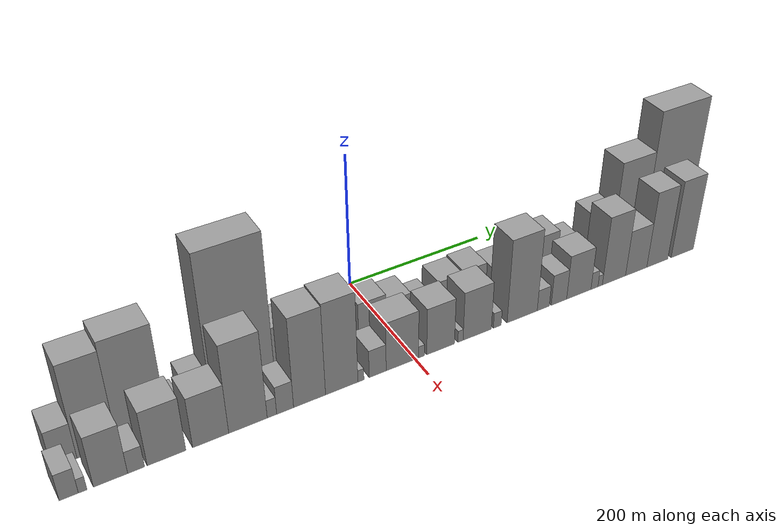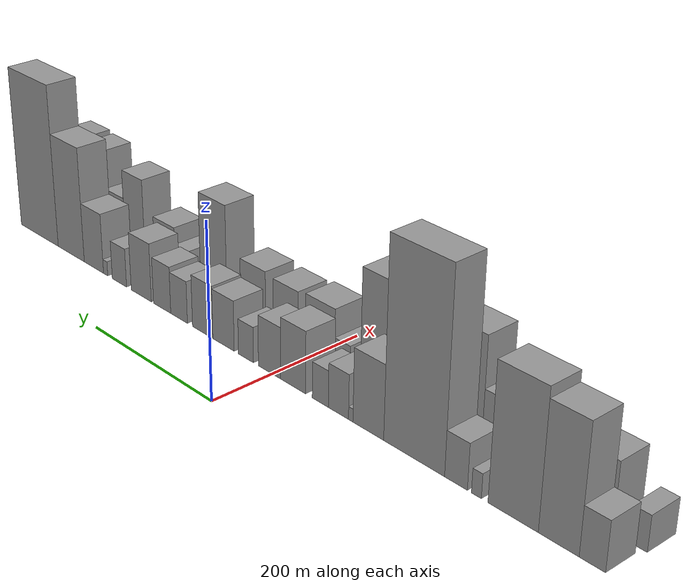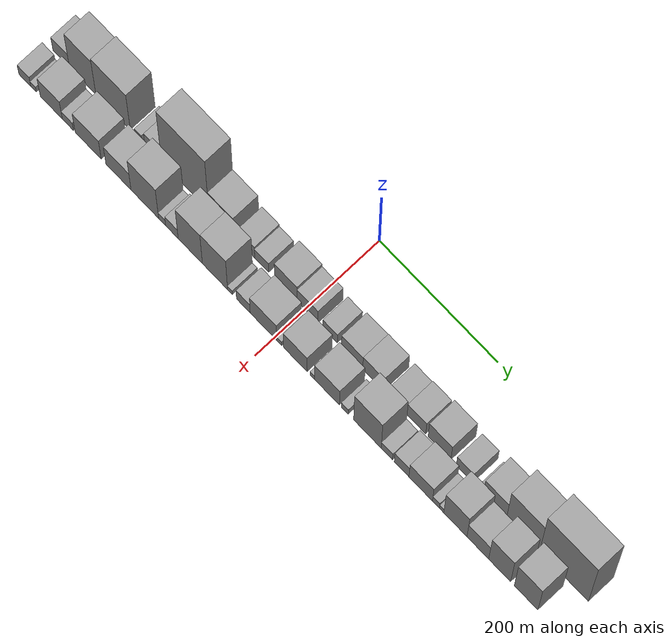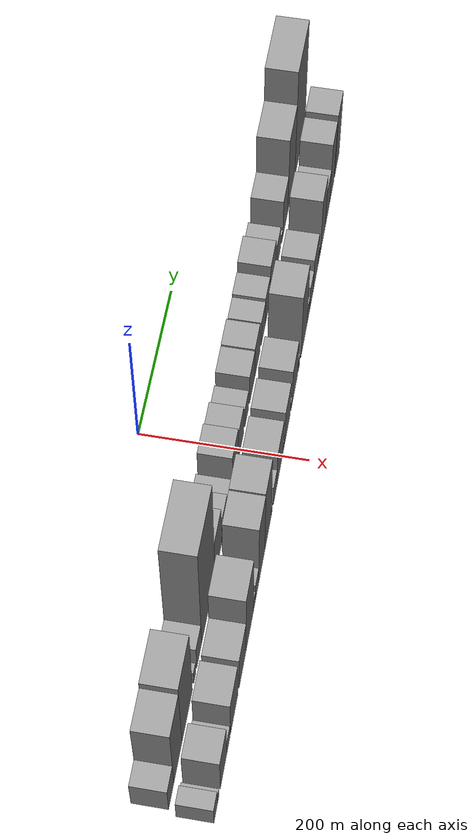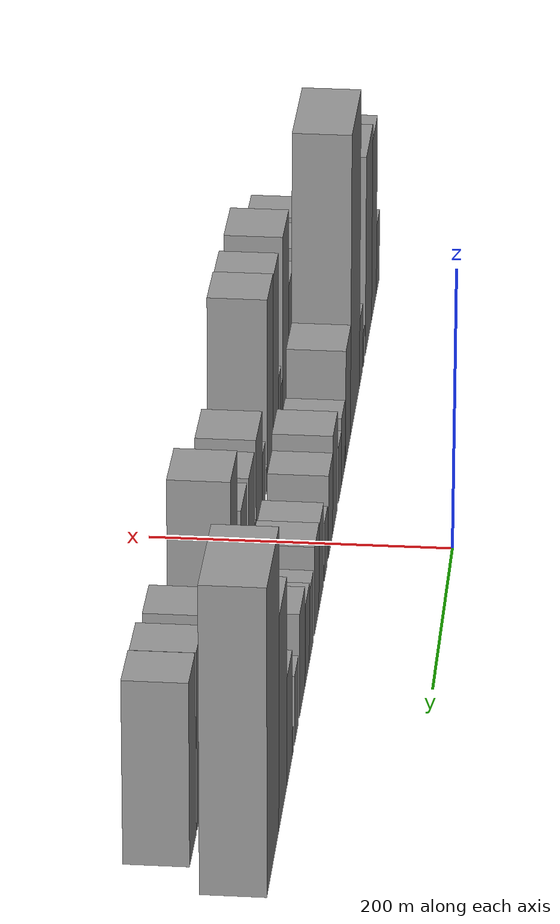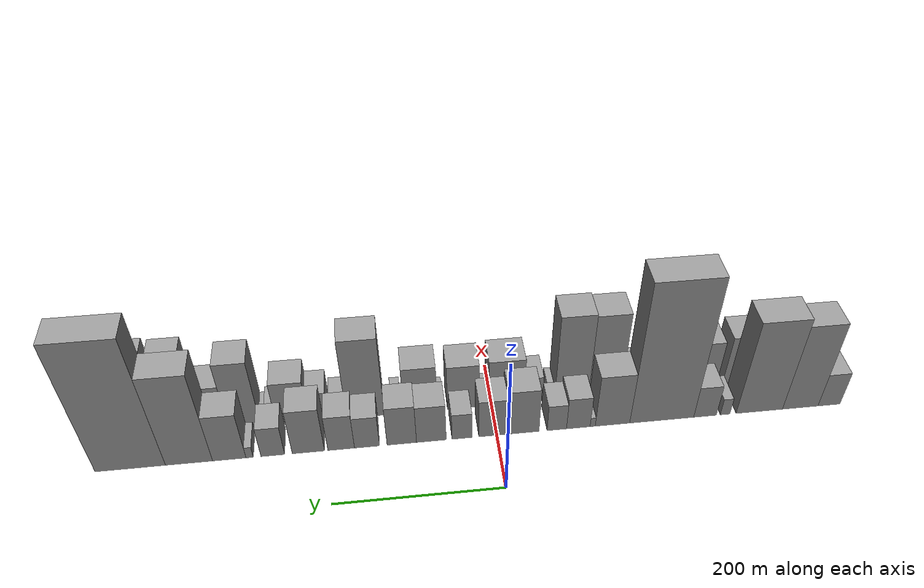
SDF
<sdf version="1.6">
 <world name="default">
  <scene>
   <sky><clouds><speed>12</speed></clouds></sky>
   <ambient>0.4 0.4 0.4 1</ambient>
   <background>0.7 0.7 0.7 1</background>
   <shadows>1</shadows>
  </scene>
  <gravity>0 0 -9.8066</gravity>
  <magnetic_field>6e-06 2.3e-05 -4.2e-05</magnetic_field>
  <physics default="0" name="default_physics" type="ode">
   <ode>
    <solver>
     <type>quick</type>
     <iters>10</iters>
     <sor>1.0</sor>
     <use_dynamic_moi_rescaling>0</use_dynamic_moi_rescaling>
    </solver>
    <constraints>
     <cfm>0</cfm>
     <erp>0.2</erp>
     <contact_max_correcting_vel>100</contact_max_correcting_vel>
     <contact_surface_layer>0.001</contact_surface_layer>
    </constraints>
   </ode>
   <max_step_size>0.004</max_step_size>
   <real_time_factor>1</real_time_factor>
   <real_time_update_rate>250</real_time_update_rate>
  </physics>
  <light name="sun" type="directional">
   <pose>0 0 10 0 0 0</pose>
   <diffuse>0.8 0.8 0.8 1</diffuse>
   <specular>0.2 0.2 0.2 1</specular>
   <attenuation>
    <range>1000</range>
    <constant>0.9</constant>
    <linear>0.01</linear>
    <quadratic>0.001</quadratic>
   </attenuation>
   <direction>-0.5 0.1 -0.9</direction>
  </light>
  <model name="building_1">
   <static>1</static>
   <pose>100.0000 -417.6882 0 0.000000 0.000000 0.000000</pose>
   <link name="link">
    <pose>0 0 27.00 0 0 0</pose>
    <collision name="collision"><geometry><box><size>40.0000 28.6236 54.0000</size></box></geometry></collision>
    <visual name="visual">
     <cast_shadows>0</cast_shadows>
     <geometry><box><size>40.0000 28.6236 54.0000</size></box></geometry>
     <material>
      <script>
       <uri>model://grey_wall/materials/scripts</uri>
       <uri>model://grey_wall/materials/textures</uri>
       <name>vrc/grey_wall</name>
      </script>
     </material>
    </visual>
   </link>
  </model>
  <model name="building_2">
   <static>1</static>
   <pose>100.0000 -380.4914 0 0.000000 0.000000 0.000000</pose>
   <link name="link">
    <pose>0 0 69.00 0 0 0</pose>
    <collision name="collision"><geometry><box><size>40.0000 45.7699 138.0000</size></box></geometry></collision>
    <visual name="visual">
     <cast_shadows>0</cast_shadows>
     <geometry><box><size>40.0000 45.7699 138.0000</size></box></geometry>
     <material>
      <script>
       <uri>model://grey_wall/materials/scripts</uri>
       <uri>model://grey_wall/materials/textures</uri>
       <name>vrc/grey_wall</name>
      </script>
     </material>
    </visual>
   </link>
  </model>
  <model name="building_3">
   <static>1</static>
   <pose>100.0000 -327.8999 0 0.000000 0.000000 0.000000</pose>
   <link name="link">
    <pose>0 0 75.00 0 0 0</pose>
    <collision name="collision"><geometry><box><size>40.0000 59.4131 150.0000</size></box></geometry></collision>
    <visual name="visual">
     <cast_shadows>0</cast_shadows>
     <geometry><box><size>40.0000 59.4131 150.0000</size></box></geometry>
     <material>
      <script>
       <uri>model://grey_wall/materials/scripts</uri>
       <uri>model://grey_wall/materials/textures</uri>
       <name>vrc/grey_wall</name>
      </script>
     </material>
    </visual>
   </link>
  </model>
  <model name="building_4">
   <static>1</static>
   <pose>100.0000 -284.0981 0 0.000000 0.000000 0.000000</pose>
   <link name="link">
    <pose>0 0 13.50 0 0 0</pose>
    <collision name="collision"><geometry><box><size>40.0000 12.1904 27.0000</size></box></geometry></collision>
    <visual name="visual">
     <cast_shadows>0</cast_shadows>
     <geometry><box><size>40.0000 12.1904 27.0000</size></box></geometry>
     <material>
      <script>
       <uri>model://grey_wall/materials/scripts</uri>
       <uri>model://grey_wall/materials/textures</uri>
       <name>vrc/grey_wall</name>
      </script>
     </material>
    </visual>
   </link>
  </model>
  <model name="building_5">
   <static>1</static>
   <pose>100.0000 -258.6479 0 0.000000 0.000000 0.000000</pose>
   <link name="link">
    <pose>0 0 25.50 0 0 0</pose>
    <collision name="collision"><geometry><box><size>40.0000 28.7099 51.0000</size></box></geometry></collision>
    <visual name="visual">
     <cast_shadows>0</cast_shadows>
     <geometry><box><size>40.0000 28.7099 51.0000</size></box></geometry>
     <material>
      <script>
       <uri>model://grey_wall/materials/scripts</uri>
       <uri>model://grey_wall/materials/textures</uri>
       <name>vrc/grey_wall</name>
      </script>
     </material>
    </visual>
   </link>
  </model>
  <model name="building_6">
   <static>1</static>
   <pose>100.0000 -203.9774 0 0.000000 0.000000 0.000000</pose>
   <link name="link">
    <pose>0 0 111.00 0 0 0</pose>
    <collision name="collision"><geometry><box><size>40.0000 80.6312 222.0000</size></box></geometry></collision>
    <visual name="visual">
     <cast_shadows>0</cast_shadows>
     <geometry><box><size>40.0000 80.6312 222.0000</size></box></geometry>
     <material>
      <script>
       <uri>model://grey_wall/materials/scripts</uri>
       <uri>model://grey_wall/materials/textures</uri>
       <name>vrc/grey_wall</name>
      </script>
     </material>
    </visual>
   </link>
  </model>
  <model name="building_7">
   <static>1</static>
   <pose>100.0000 -142.1653 0 0.000000 0.000000 0.000000</pose>
   <link name="link">
    <pose>0 0 42.00 0 0 0</pose>
    <collision name="collision"><geometry><box><size>40.0000 42.9931 84.0000</size></box></geometry></collision>
    <visual name="visual">
     <cast_shadows>0</cast_shadows>
     <geometry><box><size>40.0000 42.9931 84.0000</size></box></geometry>
     <material>
      <script>
       <uri>model://grey_wall/materials/scripts</uri>
       <uri>model://grey_wall/materials/textures</uri>
       <name>vrc/grey_wall</name>
      </script>
     </material>
    </visual>
   </link>
  </model>
  <model name="building_8">
   <static>1</static>
   <pose>100.0000 -117.4950 0 0.000000 0.000000 0.000000</pose>
   <link name="link">
    <pose>0 0 7.50 0 0 0</pose>
    <collision name="collision"><geometry><box><size>40.0000 6.3473 15.0000</size></box></geometry></collision>
    <visual name="visual">
     <cast_shadows>0</cast_shadows>
     <geometry><box><size>40.0000 6.3473 15.0000</size></box></geometry>
     <material>
      <script>
       <uri>model://grey_wall/materials/scripts</uri>
       <uri>model://grey_wall/materials/textures</uri>
       <name>vrc/grey_wall</name>
      </script>
     </material>
    </visual>
   </link>
  </model>
  <model name="building_9">
   <static>1</static>
   <pose>100.0000 -99.7230 0 0.000000 0.000000 0.000000</pose>
   <link name="link">
    <pose>0 0 25.50 0 0 0</pose>
    <collision name="collision"><geometry><box><size>40.0000 29.1967 51.0000</size></box></geometry></collision>
    <visual name="visual">
     <cast_shadows>0</cast_shadows>
     <geometry><box><size>40.0000 29.1967 51.0000</size></box></geometry>
     <material>
      <script>
       <uri>model://grey_wall/materials/scripts</uri>
       <uri>model://grey_wall/materials/textures</uri>
       <name>vrc/grey_wall</name>
      </script>
     </material>
    </visual>
   </link>
  </model>
  <model name="building_10">
   <static>1</static>
   <pose>100.0000 -73.1837 0 0.000000 0.000000 0.000000</pose>
   <link name="link">
    <pose>0 0 21.00 0 0 0</pose>
    <collision name="collision"><geometry><box><size>40.0000 23.8821 42.0000</size></box></geometry></collision>
    <visual name="visual">
     <cast_shadows>0</cast_shadows>
     <geometry><box><size>40.0000 23.8821 42.0000</size></box></geometry>
     <material>
      <script>
       <uri>model://grey_wall/materials/scripts</uri>
       <uri>model://grey_wall/materials/textures</uri>
       <name>vrc/grey_wall</name>
      </script>
     </material>
    </visual>
   </link>
  </model>
  <model name="building_11">
   <static>1</static>
   <pose>100.0000 -32.0681 0 0.000000 0.000000 0.000000</pose>
   <link name="link">
    <pose>0 0 36.00 0 0 0</pose>
    <collision name="collision"><geometry><box><size>40.0000 38.3490 72.0000</size></box></geometry></collision>
    <visual name="visual">
     <cast_shadows>0</cast_shadows>
     <geometry><box><size>40.0000 38.3490 72.0000</size></box></geometry>
     <material>
      <script>
       <uri>model://grey_wall/materials/scripts</uri>
       <uri>model://grey_wall/materials/textures</uri>
       <name>vrc/grey_wall</name>
      </script>
     </material>
    </visual>
   </link>
  </model>
  <model name="building_12">
   <static>1</static>
   <pose>100.0000 4.7327 0 0.000000 0.000000 0.000000</pose>
   <link name="link">
    <pose>0 0 30.00 0 0 0</pose>
    <collision name="collision"><geometry><box><size>40.0000 35.2528 60.0000</size></box></geometry></collision>
    <visual name="visual">
     <cast_shadows>0</cast_shadows>
     <geometry><box><size>40.0000 35.2528 60.0000</size></box></geometry>
     <material>
      <script>
       <uri>model://grey_wall/materials/scripts</uri>
       <uri>model://grey_wall/materials/textures</uri>
       <name>vrc/grey_wall</name>
      </script>
     </material>
    </visual>
   </link>
  </model>
  <model name="building_13">
   <static>1</static>
   <pose>100.0000 42.6432 0 0.000000 0.000000 0.000000</pose>
   <link name="link">
    <pose>0 0 21.00 0 0 0</pose>
    <collision name="collision"><geometry><box><size>40.0000 24.5683 42.0000</size></box></geometry></collision>
    <visual name="visual">
     <cast_shadows>0</cast_shadows>
     <geometry><box><size>40.0000 24.5683 42.0000</size></box></geometry>
     <material>
      <script>
       <uri>model://grey_wall/materials/scripts</uri>
       <uri>model://grey_wall/materials/textures</uri>
       <name>vrc/grey_wall</name>
      </script>
     </material>
    </visual>
   </link>
  </model>
  <model name="building_14">
   <static>1</static>
   <pose>100.0000 79.8603 0 0.000000 0.000000 0.000000</pose>
   <link name="link">
    <pose>0 0 30.00 0 0 0</pose>
    <collision name="collision"><geometry><box><size>40.0000 35.8658 60.0000</size></box></geometry></collision>
    <visual name="visual">
     <cast_shadows>0</cast_shadows>
     <geometry><box><size>40.0000 35.8658 60.0000</size></box></geometry>
     <material>
      <script>
       <uri>model://grey_wall/materials/scripts</uri>
       <uri>model://grey_wall/materials/textures</uri>
       <name>vrc/grey_wall</name>
      </script>
     </material>
    </visual>
   </link>
  </model>
  <model name="building_15">
   <static>1</static>
   <pose>100.0000 115.4482 0 0.000000 0.000000 0.000000</pose>
   <link name="link">
    <pose>0 0 31.50 0 0 0</pose>
    <collision name="collision"><geometry><box><size>40.0000 35.3100 63.0000</size></box></geometry></collision>
    <visual name="visual">
     <cast_shadows>0</cast_shadows>
     <geometry><box><size>40.0000 35.3100 63.0000</size></box></geometry>
     <material>
      <script>
       <uri>model://grey_wall/materials/scripts</uri>
       <uri>model://grey_wall/materials/textures</uri>
       <name>vrc/grey_wall</name>
      </script>
     </material>
    </visual>
   </link>
  </model>
  <model name="building_16">
   <static>1</static>
   <pose>100.0000 157.0196 0 0.000000 0.000000 0.000000</pose>
   <link name="link">
    <pose>0 0 25.50 0 0 0</pose>
    <collision name="collision"><geometry><box><size>40.0000 29.8329 51.0000</size></box></geometry></collision>
    <visual name="visual">
     <cast_shadows>0</cast_shadows>
     <geometry><box><size>40.0000 29.8329 51.0000</size></box></geometry>
     <material>
      <script>
       <uri>model://grey_wall/materials/scripts</uri>
       <uri>model://grey_wall/materials/textures</uri>
       <name>vrc/grey_wall</name>
      </script>
     </material>
    </visual>
   </link>
  </model>
  <model name="building_17">
   <static>1</static>
   <pose>100.0000 187.7268 0 0.000000 0.000000 0.000000</pose>
   <link name="link">
    <pose>0 0 28.50 0 0 0</pose>
    <collision name="collision"><geometry><box><size>40.0000 31.5815 57.0000</size></box></geometry></collision>
    <visual name="visual">
     <cast_shadows>0</cast_shadows>
     <geometry><box><size>40.0000 31.5815 57.0000</size></box></geometry>
     <material>
      <script>
       <uri>model://grey_wall/materials/scripts</uri>
       <uri>model://grey_wall/materials/textures</uri>
       <name>vrc/grey_wall</name>
      </script>
     </material>
    </visual>
   </link>
  </model>
  <model name="building_18">
   <static>1</static>
   <pose>100.0000 226.5355 0 0.000000 0.000000 0.000000</pose>
   <link name="link">
    <pose>0 0 36.00 0 0 0</pose>
    <collision name="collision"><geometry><box><size>40.0000 38.0360 72.0000</size></box></geometry></collision>
    <visual name="visual">
     <cast_shadows>0</cast_shadows>
     <geometry><box><size>40.0000 38.0360 72.0000</size></box></geometry>
     <material>
      <script>
       <uri>model://grey_wall/materials/scripts</uri>
       <uri>model://grey_wall/materials/textures</uri>
       <name>vrc/grey_wall</name>
      </script>
     </material>
    </visual>
   </link>
  </model>
  <model name="building_19">
   <static>1</static>
   <pose>100.0000 268.4300 0 0.000000 0.000000 0.000000</pose>
   <link name="link">
    <pose>0 0 24.00 0 0 0</pose>
    <collision name="collision"><geometry><box><size>40.0000 27.7530 48.0000</size></box></geometry></collision>
    <visual name="visual">
     <cast_shadows>0</cast_shadows>
     <geometry><box><size>40.0000 27.7530 48.0000</size></box></geometry>
     <material>
      <script>
       <uri>model://grey_wall/materials/scripts</uri>
       <uri>model://grey_wall/materials/textures</uri>
       <name>vrc/grey_wall</name>
      </script>
     </material>
    </visual>
   </link>
  </model>
  <model name="building_20">
   <static>1</static>
   <pose>100.0000 295.5262 0 0.000000 0.000000 0.000000</pose>
   <link name="link">
    <pose>0 0 9.00 0 0 0</pose>
    <collision name="collision"><geometry><box><size>40.0000 8.4394 18.0000</size></box></geometry></collision>
    <visual name="visual">
     <cast_shadows>0</cast_shadows>
     <geometry><box><size>40.0000 8.4394 18.0000</size></box></geometry>
     <material>
      <script>
       <uri>model://grey_wall/materials/scripts</uri>
       <uri>model://grey_wall/materials/textures</uri>
       <name>vrc/grey_wall</name>
      </script>
     </material>
    </visual>
   </link>
  </model>
  <model name="building_21">
   <static>1</static>
   <pose>100.0000 319.1508 0 0.000000 0.000000 0.000000</pose>
   <link name="link">
    <pose>0 0 37.50 0 0 0</pose>
    <collision name="collision"><geometry><box><size>40.0000 38.8098 75.0000</size></box></geometry></collision>
    <visual name="visual">
     <cast_shadows>0</cast_shadows>
     <geometry><box><size>40.0000 38.8098 75.0000</size></box></geometry>
     <material>
      <script>
       <uri>model://grey_wall/materials/scripts</uri>
       <uri>model://grey_wall/materials/textures</uri>
       <name>vrc/grey_wall</name>
      </script>
     </material>
    </visual>
   </link>
  </model>
  <model name="building_22">
   <static>1</static>
   <pose>100.0000 365.8155 0 0.000000 0.000000 0.000000</pose>
   <link name="link">
    <pose>0 0 72.00 0 0 0</pose>
    <collision name="collision"><geometry><box><size>40.0000 54.5195 144.0000</size></box></geometry></collision>
    <visual name="visual">
     <cast_shadows>0</cast_shadows>
     <geometry><box><size>40.0000 54.5195 144.0000</size></box></geometry>
     <material>
      <script>
       <uri>model://grey_wall/materials/scripts</uri>
       <uri>model://grey_wall/materials/textures</uri>
       <name>vrc/grey_wall</name>
      </script>
     </material>
    </visual>
   </link>
  </model>
  <model name="building_23">
   <static>1</static>
   <pose>100.0000 433.3794 0 0.000000 0.000000 0.000000</pose>
   <link name="link">
    <pose>0 0 102.00 0 0 0</pose>
    <collision name="collision"><geometry><box><size>40.0000 80.6083 204.0000</size></box></geometry></collision>
    <visual name="visual">
     <cast_shadows>0</cast_shadows>
     <geometry><box><size>40.0000 80.6083 204.0000</size></box></geometry>
     <material>
      <script>
       <uri>model://grey_wall/materials/scripts</uri>
       <uri>model://grey_wall/materials/textures</uri>
       <name>vrc/grey_wall</name>
      </script>
     </material>
    </visual>
   </link>
  </model>
  <model name="building_24">
   <static>1</static>
   <pose>149.0000 -427.6304 0 0.000000 0.000000 0.000000</pose>
   <link name="link">
    <pose>0 0 19.50 0 0 0</pose>
    <collision name="collision"><geometry><box><size>40.0000 20.7392 39.0000</size></box></geometry></collision>
    <visual name="visual">
     <cast_shadows>0</cast_shadows>
     <geometry><box><size>40.0000 20.7392 39.0000</size></box></geometry>
     <material>
      <script>
       <uri>model://grey_wall/materials/scripts</uri>
       <uri>model://grey_wall/materials/textures</uri>
       <name>vrc/grey_wall</name>
      </script>
     </material>
    </visual>
   </link>
  </model>
  <model name="building_25">
   <static>1</static>
   <pose>149.0000 -412.5356 0 0.000000 0.000000 0.000000</pose>
   <link name="link">
    <pose>0 0 10.50 0 0 0</pose>
    <collision name="collision"><geometry><box><size>40.0000 9.4504 21.0000</size></box></geometry></collision>
    <visual name="visual">
     <cast_shadows>0</cast_shadows>
     <geometry><box><size>40.0000 9.4504 21.0000</size></box></geometry>
     <material>
      <script>
       <uri>model://grey_wall/materials/scripts</uri>
       <uri>model://grey_wall/materials/textures</uri>
       <name>vrc/grey_wall</name>
      </script>
     </material>
    </visual>
   </link>
  </model>
  <model name="building_26">
   <static>1</static>
   <pose>149.0000 -381.7161 0 0.000000 0.000000 0.000000</pose>
   <link name="link">
    <pose>0 0 37.50 0 0 0</pose>
    <collision name="collision"><geometry><box><size>40.0000 38.1886 75.0000</size></box></geometry></collision>
    <visual name="visual">
     <cast_shadows>0</cast_shadows>
     <geometry><box><size>40.0000 38.1886 75.0000</size></box></geometry>
     <material>
      <script>
       <uri>model://grey_wall/materials/scripts</uri>
       <uri>model://grey_wall/materials/textures</uri>
       <name>vrc/grey_wall</name>
      </script>
     </material>
    </visual>
   </link>
  </model>
  <model name="building_27">
   <static>1</static>
   <pose>149.0000 -353.0069 0 0.000000 0.000000 0.000000</pose>
   <link name="link">
    <pose>0 0 16.50 0 0 0</pose>
    <collision name="collision"><geometry><box><size>40.0000 19.2297 33.0000</size></box></geometry></collision>
    <visual name="visual">
     <cast_shadows>0</cast_shadows>
     <geometry><box><size>40.0000 19.2297 33.0000</size></box></geometry>
     <material>
      <script>
       <uri>model://grey_wall/materials/scripts</uri>
       <uri>model://grey_wall/materials/textures</uri>
       <name>vrc/grey_wall</name>
      </script>
     </material>
    </visual>
   </link>
  </model>
  <model name="building_28">
   <static>1</static>
   <pose>149.0000 -317.9623 0 0.000000 0.000000 0.000000</pose>
   <link name="link">
    <pose>0 0 40.50 0 0 0</pose>
    <collision name="collision"><geometry><box><size>40.0000 44.8595 81.0000</size></box></geometry></collision>
    <visual name="visual">
     <cast_shadows>0</cast_shadows>
     <geometry><box><size>40.0000 44.8595 81.0000</size></box></geometry>
     <material>
      <script>
       <uri>model://grey_wall/materials/scripts</uri>
       <uri>model://grey_wall/materials/textures</uri>
       <name>vrc/grey_wall</name>
      </script>
     </material>
    </visual>
   </link>
  </model>
  <model name="building_29">
   <static>1</static>
   <pose>149.0000 -265.9006 0 0.000000 0.000000 0.000000</pose>
   <link name="link">
    <pose>0 0 37.50 0 0 0</pose>
    <collision name="collision"><geometry><box><size>40.0000 43.2639 75.0000</size></box></geometry></collision>
    <visual name="visual">
     <cast_shadows>0</cast_shadows>
     <geometry><box><size>40.0000 43.2639 75.0000</size></box></geometry>
     <material>
      <script>
       <uri>model://grey_wall/materials/scripts</uri>
       <uri>model://grey_wall/materials/textures</uri>
       <name>vrc/grey_wall</name>
      </script>
     </material>
    </visual>
   </link>
  </model>
  <model name="building_30">
   <static>1</static>
   <pose>149.0000 -220.5311 0 0.000000 0.000000 0.000000</pose>
   <link name="link">
    <pose>0 0 66.00 0 0 0</pose>
    <collision name="collision"><geometry><box><size>40.0000 47.4752 132.0000</size></box></geometry></collision>
    <visual name="visual">
     <cast_shadows>0</cast_shadows>
     <geometry><box><size>40.0000 47.4752 132.0000</size></box></geometry>
     <material>
      <script>
       <uri>model://grey_wall/materials/scripts</uri>
       <uri>model://grey_wall/materials/textures</uri>
       <name>vrc/grey_wall</name>
      </script>
     </material>
    </visual>
   </link>
  </model>
  <model name="building_31">
   <static>1</static>
   <pose>149.0000 -190.8481 0 0.000000 0.000000 0.000000</pose>
   <link name="link">
    <pose>0 0 13.50 0 0 0</pose>
    <collision name="collision"><geometry><box><size>40.0000 11.8907 27.0000</size></box></geometry></collision>
    <visual name="visual">
     <cast_shadows>0</cast_shadows>
     <geometry><box><size>40.0000 11.8907 27.0000</size></box></geometry>
     <material>
      <script>
       <uri>model://grey_wall/materials/scripts</uri>
       <uri>model://grey_wall/materials/textures</uri>
       <name>vrc/grey_wall</name>
      </script>
     </material>
    </visual>
   </link>
  </model>
  <model name="building_32">
   <static>1</static>
   <pose>149.0000 -174.1702 0 0.000000 0.000000 0.000000</pose>
   <link name="link">
    <pose>0 0 21.00 0 0 0</pose>
    <collision name="collision"><geometry><box><size>40.0000 21.4650 42.0000</size></box></geometry></collision>
    <visual name="visual">
     <cast_shadows>0</cast_shadows>
     <geometry><box><size>40.0000 21.4650 42.0000</size></box></geometry>
     <material>
      <script>
       <uri>model://grey_wall/materials/scripts</uri>
       <uri>model://grey_wall/materials/textures</uri>
       <name>vrc/grey_wall</name>
      </script>
     </material>
    </visual>
   </link>
  </model>
  <model name="building_33">
   <static>1</static>
   <pose>149.0000 -142.7809 0 0.000000 0.000000 0.000000</pose>
   <link name="link">
    <pose>0 0 67.50 0 0 0</pose>
    <collision name="collision"><geometry><box><size>40.0000 41.3136 135.0000</size></box></geometry></collision>
    <visual name="visual">
     <cast_shadows>0</cast_shadows>
     <geometry><box><size>40.0000 41.3136 135.0000</size></box></geometry>
     <material>
      <script>
       <uri>model://grey_wall/materials/scripts</uri>
       <uri>model://grey_wall/materials/textures</uri>
       <name>vrc/grey_wall</name>
      </script>
     </material>
    </visual>
   </link>
  </model>
  <model name="building_34">
   <static>1</static>
   <pose>149.0000 -100.6584 0 0.000000 0.000000 0.000000</pose>
   <link name="link">
    <pose>0 0 69.00 0 0 0</pose>
    <collision name="collision"><geometry><box><size>40.0000 42.9315 138.0000</size></box></geometry></collision>
    <visual name="visual">
     <cast_shadows>0</cast_shadows>
     <geometry><box><size>40.0000 42.9315 138.0000</size></box></geometry>
     <material>
      <script>
       <uri>model://grey_wall/materials/scripts</uri>
       <uri>model://grey_wall/materials/textures</uri>
       <name>vrc/grey_wall</name>
      </script>
     </material>
    </visual>
   </link>
  </model>
  <model name="building_35">
   <static>1</static>
   <pose>149.0000 -75.0610 0 0.000000 0.000000 0.000000</pose>
   <link name="link">
    <pose>0 0 9.00 0 0 0</pose>
    <collision name="collision"><geometry><box><size>40.0000 8.2633 18.0000</size></box></geometry></collision>
    <visual name="visual">
     <cast_shadows>0</cast_shadows>
     <geometry><box><size>40.0000 8.2633 18.0000</size></box></geometry>
     <material>
      <script>
       <uri>model://grey_wall/materials/scripts</uri>
       <uri>model://grey_wall/materials/textures</uri>
       <name>vrc/grey_wall</name>
      </script>
     </material>
    </visual>
   </link>
  </model>
  <model name="building_36">
   <static>1</static>
   <pose>149.0000 -52.3631 0 0.000000 0.000000 0.000000</pose>
   <link name="link">
    <pose>0 0 21.00 0 0 0</pose>
    <collision name="collision"><geometry><box><size>40.0000 23.1324 42.0000</size></box></geometry></collision>
    <visual name="visual">
     <cast_shadows>0</cast_shadows>
     <geometry><box><size>40.0000 23.1324 42.0000</size></box></geometry>
     <material>
      <script>
       <uri>model://grey_wall/materials/scripts</uri>
       <uri>model://grey_wall/materials/textures</uri>
       <name>vrc/grey_wall</name>
      </script>
     </material>
    </visual>
   </link>
  </model>
  <model name="building_37">
   <static>1</static>
   <pose>149.0000 -18.3000 0 0.000000 0.000000 0.000000</pose>
   <link name="link">
    <pose>0 0 37.50 0 0 0</pose>
    <collision name="collision"><geometry><box><size>40.0000 44.9939 75.0000</size></box></geometry></collision>
    <visual name="visual">
     <cast_shadows>0</cast_shadows>
     <geometry><box><size>40.0000 44.9939 75.0000</size></box></geometry>
     <material>
      <script>
       <uri>model://grey_wall/materials/scripts</uri>
       <uri>model://grey_wall/materials/textures</uri>
       <name>vrc/grey_wall</name>
      </script>
     </material>
    </visual>
   </link>
  </model>
  <model name="building_38">
   <static>1</static>
   <pose>149.0000 8.5212 0 0.000000 0.000000 0.000000</pose>
   <link name="link">
    <pose>0 0 9.00 0 0 0</pose>
    <collision name="collision"><geometry><box><size>40.0000 8.6485 18.0000</size></box></geometry></collision>
    <visual name="visual">
     <cast_shadows>0</cast_shadows>
     <geometry><box><size>40.0000 8.6485 18.0000</size></box></geometry>
     <material>
      <script>
       <uri>model://grey_wall/materials/scripts</uri>
       <uri>model://grey_wall/materials/textures</uri>
       <name>vrc/grey_wall</name>
      </script>
     </material>
    </visual>
   </link>
  </model>
  <model name="building_39">
   <static>1</static>
   <pose>149.0000 35.7795 0 0.000000 0.000000 0.000000</pose>
   <link name="link">
    <pose>0 0 36.00 0 0 0</pose>
    <collision name="collision"><geometry><box><size>40.0000 39.8682 72.0000</size></box></geometry></collision>
    <visual name="visual">
     <cast_shadows>0</cast_shadows>
     <geometry><box><size>40.0000 39.8682 72.0000</size></box></geometry>
     <material>
      <script>
       <uri>model://grey_wall/materials/scripts</uri>
       <uri>model://grey_wall/materials/textures</uri>
       <name>vrc/grey_wall</name>
      </script>
     </material>
    </visual>
   </link>
  </model>
  <model name="building_40">
   <static>1</static>
   <pose>149.0000 64.5124 0 0.000000 0.000000 0.000000</pose>
   <link name="link">
    <pose>0 0 9.00 0 0 0</pose>
    <collision name="collision"><geometry><box><size>40.0000 7.5975 18.0000</size></box></geometry></collision>
    <visual name="visual">
     <cast_shadows>0</cast_shadows>
     <geometry><box><size>40.0000 7.5975 18.0000</size></box></geometry>
     <material>
      <script>
       <uri>model://grey_wall/materials/scripts</uri>
       <uri>model://grey_wall/materials/textures</uri>
       <name>vrc/grey_wall</name>
      </script>
     </material>
    </visual>
   </link>
  </model>
  <model name="building_41">
   <static>1</static>
   <pose>149.0000 89.2406 0 0.000000 0.000000 0.000000</pose>
   <link name="link">
    <pose>0 0 37.50 0 0 0</pose>
    <collision name="collision"><geometry><box><size>40.0000 41.8590 75.0000</size></box></geometry></collision>
    <visual name="visual">
     <cast_shadows>0</cast_shadows>
     <geometry><box><size>40.0000 41.8590 75.0000</size></box></geometry>
     <material>
      <script>
       <uri>model://grey_wall/materials/scripts</uri>
       <uri>model://grey_wall/materials/textures</uri>
       <name>vrc/grey_wall</name>
      </script>
     </material>
    </visual>
   </link>
  </model>
  <model name="building_42">
   <static>1</static>
   <pose>149.0000 119.0910 0 0.000000 0.000000 0.000000</pose>
   <link name="link">
    <pose>0 0 12.00 0 0 0</pose>
    <collision name="collision"><geometry><box><size>40.0000 11.8417 24.0000</size></box></geometry></collision>
    <visual name="visual">
     <cast_shadows>0</cast_shadows>
     <geometry><box><size>40.0000 11.8417 24.0000</size></box></geometry>
     <material>
      <script>
       <uri>model://grey_wall/materials/scripts</uri>
       <uri>model://grey_wall/materials/textures</uri>
       <name>vrc/grey_wall</name>
      </script>
     </material>
    </visual>
   </link>
  </model>
  <model name="building_43">
   <static>1</static>
   <pose>149.0000 157.1485 0 0.000000 0.000000 0.000000</pose>
   <link name="link">
    <pose>0 0 64.50 0 0 0</pose>
    <collision name="collision"><geometry><box><size>40.0000 46.2735 129.0000</size></box></geometry></collision>
    <visual name="visual">
     <cast_shadows>0</cast_shadows>
     <geometry><box><size>40.0000 46.2735 129.0000</size></box></geometry>
     <material>
      <script>
       <uri>model://grey_wall/materials/scripts</uri>
       <uri>model://grey_wall/materials/textures</uri>
       <name>vrc/grey_wall</name>
      </script>
     </material>
    </visual>
   </link>
  </model>
  <model name="building_44">
   <static>1</static>
   <pose>149.0000 189.7757 0 0.000000 0.000000 0.000000</pose>
   <link name="link">
    <pose>0 0 16.50 0 0 0</pose>
    <collision name="collision"><geometry><box><size>40.0000 18.9808 33.0000</size></box></geometry></collision>
    <visual name="visual">
     <cast_shadows>0</cast_shadows>
     <geometry><box><size>40.0000 18.9808 33.0000</size></box></geometry>
     <material>
      <script>
       <uri>model://grey_wall/materials/scripts</uri>
       <uri>model://grey_wall/materials/textures</uri>
       <name>vrc/grey_wall</name>
      </script>
     </material>
    </visual>
   </link>
  </model>
  <model name="building_45">
   <static>1</static>
   <pose>149.0000 214.5137 0 0.000000 0.000000 0.000000</pose>
   <link name="link">
    <pose>0 0 24.00 0 0 0</pose>
    <collision name="collision"><geometry><box><size>40.0000 24.4952 48.0000</size></box></geometry></collision>
    <visual name="visual">
     <cast_shadows>0</cast_shadows>
     <geometry><box><size>40.0000 24.4952 48.0000</size></box></geometry>
     <material>
      <script>
       <uri>model://grey_wall/materials/scripts</uri>
       <uri>model://grey_wall/materials/textures</uri>
       <name>vrc/grey_wall</name>
      </script>
     </material>
    </visual>
   </link>
  </model>
  <model name="building_46">
   <static>1</static>
   <pose>149.0000 246.3811 0 0.000000 0.000000 0.000000</pose>
   <link name="link">
    <pose>0 0 34.50 0 0 0</pose>
    <collision name="collision"><geometry><box><size>40.0000 39.2397 69.0000</size></box></geometry></collision>
    <visual name="visual">
     <cast_shadows>0</cast_shadows>
     <geometry><box><size>40.0000 39.2397 69.0000</size></box></geometry>
     <material>
      <script>
       <uri>model://grey_wall/materials/scripts</uri>
       <uri>model://grey_wall/materials/textures</uri>
       <name>vrc/grey_wall</name>
      </script>
     </material>
    </visual>
   </link>
  </model>
  <model name="building_47">
   <static>1</static>
   <pose>149.0000 271.7485 0 0.000000 0.000000 0.000000</pose>
   <link name="link">
    <pose>0 0 13.50 0 0 0</pose>
    <collision name="collision"><geometry><box><size>40.0000 11.4951 27.0000</size></box></geometry></collision>
    <visual name="visual">
     <cast_shadows>0</cast_shadows>
     <geometry><box><size>40.0000 11.4951 27.0000</size></box></geometry>
     <material>
      <script>
       <uri>model://grey_wall/materials/scripts</uri>
       <uri>model://grey_wall/materials/textures</uri>
       <name>vrc/grey_wall</name>
      </script>
     </material>
    </visual>
   </link>
  </model>
  <model name="building_48">
   <static>1</static>
   <pose>149.0000 281.1371 0 0.000000 0.000000 0.000000</pose>
   <link name="link">
    <pose>0 0 9.00 0 0 0</pose>
    <collision name="collision"><geometry><box><size>40.0000 7.2820 18.0000</size></box></geometry></collision>
    <visual name="visual">
     <cast_shadows>0</cast_shadows>
     <geometry><box><size>40.0000 7.2820 18.0000</size></box></geometry>
     <material>
      <script>
       <uri>model://grey_wall/materials/scripts</uri>
       <uri>model://grey_wall/materials/textures</uri>
       <name>vrc/grey_wall</name>
      </script>
     </material>
    </visual>
   </link>
  </model>
  <model name="building_49">
   <static>1</static>
   <pose>149.0000 304.0903 0 0.000000 0.000000 0.000000</pose>
   <link name="link">
    <pose>0 0 54.00 0 0 0</pose>
    <collision name="collision"><geometry><box><size>40.0000 38.6244 108.0000</size></box></geometry></collision>
    <visual name="visual">
     <cast_shadows>0</cast_shadows>
     <geometry><box><size>40.0000 38.6244 108.0000</size></box></geometry>
     <material>
      <script>
       <uri>model://grey_wall/materials/scripts</uri>
       <uri>model://grey_wall/materials/textures</uri>
       <name>vrc/grey_wall</name>
      </script>
     </material>
    </visual>
   </link>
  </model>
  <model name="building_50">
   <static>1</static>
   <pose>149.0000 341.4548 0 0.000000 0.000000 0.000000</pose>
   <link name="link">
    <pose>0 0 36.00 0 0 0</pose>
    <collision name="collision"><geometry><box><size>40.0000 36.1046 72.0000</size></box></geometry></collision>
    <visual name="visual">
     <cast_shadows>0</cast_shadows>
     <geometry><box><size>40.0000 36.1046 72.0000</size></box></geometry>
     <material>
      <script>
       <uri>model://grey_wall/materials/scripts</uri>
       <uri>model://grey_wall/materials/textures</uri>
       <name>vrc/grey_wall</name>
      </script>
     </material>
    </visual>
   </link>
  </model>
  <model name="building_51">
   <static>1</static>
   <pose>149.0000 377.6896 0 0.000000 0.000000 0.000000</pose>
   <link name="link">
    <pose>0 0 60.00 0 0 0</pose>
    <collision name="collision"><geometry><box><size>40.0000 36.3651 120.0000</size></box></geometry></collision>
    <visual name="visual">
     <cast_shadows>0</cast_shadows>
     <geometry><box><size>40.0000 36.3651 120.0000</size></box></geometry>
     <material>
      <script>
       <uri>model://grey_wall/materials/scripts</uri>
       <uri>model://grey_wall/materials/textures</uri>
       <name>vrc/grey_wall</name>
      </script>
     </material>
    </visual>
   </link>
  </model>
  <model name="building_52">
   <static>1</static>
   <pose>149.0000 421.4247 0 0.000000 0.000000 0.000000</pose>
   <link name="link">
    <pose>0 0 61.50 0 0 0</pose>
    <collision name="collision"><geometry><box><size>40.0000 39.1051 123.0000</size></box></geometry></collision>
    <visual name="visual">
     <cast_shadows>0</cast_shadows>
     <geometry><box><size>40.0000 39.1051 123.0000</size></box></geometry>
     <material>
      <script>
       <uri>model://grey_wall/materials/scripts</uri>
       <uri>model://grey_wall/materials/textures</uri>
       <name>vrc/grey_wall</name>
      </script>
     </material>
    </visual>
   </link>
  </model>
 </world>
</sdf>
